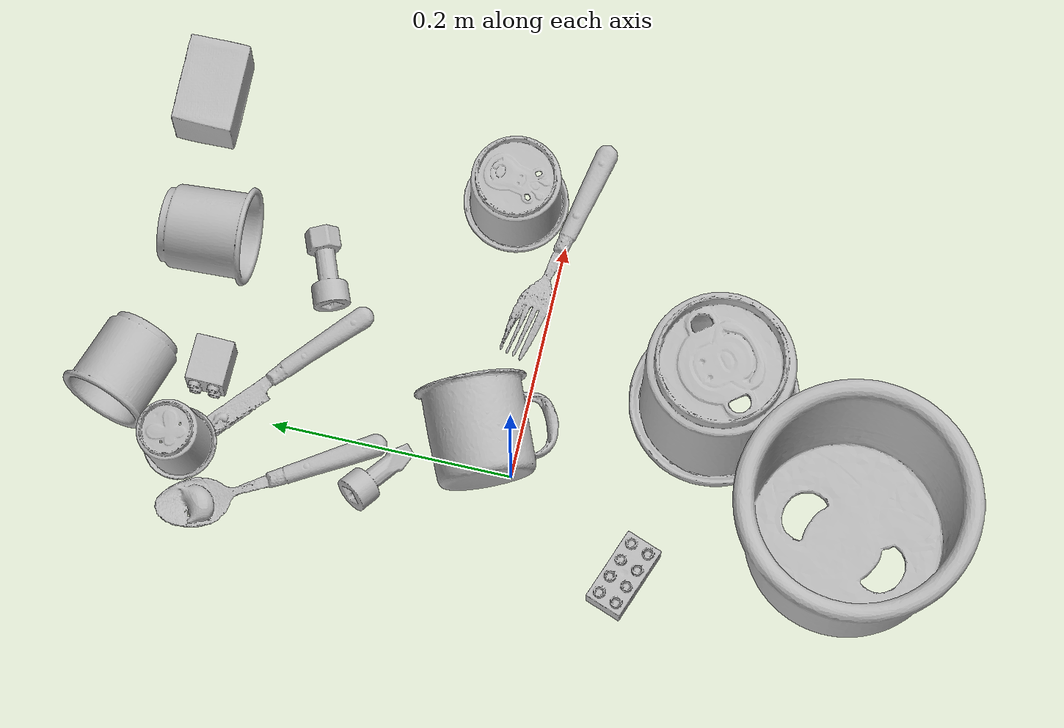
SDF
<sdf version="1.4">
  <world name="default">
    <light name="light1" type="point">
      <pose>0 0 1 0 0 0</pose>
      <diffuse>3 3 3 1</diffuse>
      <specular>3 3 3 1</specular>
    </light>
    <light name="light2" type="point">
      <pose>0 0.5 2 0 0 0</pose>
      <diffuse>1 1 1 1</diffuse>
      <specular>1 1 1 1</specular>
    </light>
    <light name="light3" type="point">
      <pose>0 0.5 2 0 0 0</pose>
      <diffuse>3 3 3 1</diffuse>
      <specular>3 3 3 1</specular>
    </light>
    <scene>
      <ambient>0.7 0.7 0.7</ambient>
    </scene>
    <model name="cup1">
      <link name="link_cup1">
        <collision name="default">
          <geometry>
            <mesh>
              <uri>model://e_cups/collision_meshes/collision.obj</uri>
              <scale>1.0 1.0 1.0</scale>
            </mesh>
          </geometry>
          <surface>
            <friction>
              <ode>
                <mu>0.5</mu>
                <mu2>0.5</mu2>
              </ode>
            </friction>
          <contact>
        <ode>
            <max_vel>0</max_vel>
            <min_depth>0.0001</min_depth>
            <kp>1e8</kp>
        </ode>
    </contact></surface>
        </collision>
        <visual name="default">
          <geometry>
            <mesh>
              <uri>model://e_cups/visual_meshes/visual.dae</uri>
              <scale>1.0 1.0 1.0</scale>
            </mesh>
          </geometry>
        </visual>
        <inertial>
          <mass>0.07679437845945358</mass>
          <pose>0.001135574304498732 0.002879783743992448 -0.0038829718250781298 0.6952411595659588 0.08767733322521654 -0.5235244631248706</pose>
          <inertia>
            <ixx>6.771342e-05</ixx>
            <iyy>7.077022e-05</iyy>
            <izz>6.4741864e-05</izz>
            <ixy>0</ixy>
            <ixz>0</ixz>
            <iyz>0</iyz>
          </inertia>
        </inertial>
      </link>
      <pose>0.01212354376912117 0.3250763714313507 0.03495634347200394 -1.4822644469961324 0.05199318186064441 1.2624431390785726</pose>
    </model>
    <model name="silverware1">
      <link name="link_silverware1">
        <collision name="default">
          <geometry>
            <mesh>
              <uri>model://spoon/collision_meshes/collision.obj</uri>
              <scale>1.0 1.0 1.0</scale>
            </mesh>
          </geometry>
          <surface>
            <friction>
              <ode>
                <mu>0.5</mu>
                <mu2>0.5</mu2>
              </ode>
            </friction>
          <contact>
        <ode>
            <max_vel>0</max_vel>
            <min_depth>0.0001</min_depth>
            <kp>1e8</kp>
        </ode>
    </contact></surface>
        </collision>
        <visual name="default">
          <geometry>
            <mesh>
              <uri>model://spoon/visual_meshes/visual.dae</uri>
              <scale>1.0 1.0 1.0</scale>
            </mesh>
          </geometry>
        </visual>
        <inertial>
          <mass>0.015083584003150463</mass>
          <pose>-0.005526313092559576 -0.001603418029844761 -0.000727165665011853 0.035216710638299134 -0.03906584880684835 0.006150613179751253</pose>
          <inertia>
            <ixx>8.389734e-07</ixx>
            <iyy>5.739254e-05</iyy>
            <izz>5.7806283e-05</izz>
            <ixy>0</ixy>
            <ixz>0</ixz>
            <iyz>0</iyz>
          </inertia>
        </inertial>
      </link>
      <pose>-0.04796982184052467 0.1891319304704666 0.008385257795453072 0.006729105320507774 0.026892999540218614 2.1099489197308174</pose>
    </model>
    <model name="cup2">
      <link name="link_cup2">
        <collision name="default">
          <geometry>
            <mesh>
              <uri>model://g_cups/collision_meshes/collision.obj</uri>
              <scale>1.0 1.0 1.0</scale>
            </mesh>
          </geometry>
          <surface>
            <friction>
              <ode>
                <mu>0.5</mu>
                <mu2>0.5</mu2>
              </ode>
            </friction>
          <contact>
        <ode>
            <max_vel>0</max_vel>
            <min_depth>0.0001</min_depth>
            <kp>1e8</kp>
        </ode>
    </contact></surface>
        </collision>
        <visual name="default">
          <geometry>
            <mesh>
              <uri>model://g_cups/visual_meshes/visual.dae</uri>
              <scale>1.0 1.0 1.0</scale>
            </mesh>
          </geometry>
        </visual>
        <inertial>
          <mass>0.04187431186437607</mass>
          <pose>-0.0007946277037262917 -4.2064348235726357e-05 -0.0021329382434487343 -0.21382305588888167 -0.31410659578681893 0.31120215507532384</pose>
          <inertia>
            <ixx>4.8876722e-05</ixx>
            <iyy>4.871046e-05</iyy>
            <izz>5.0627856e-05</izz>
            <ixy>0</ixy>
            <ixz>0</ixz>
            <iyz>0</iyz>
          </inertia>
        </inertial>
      </link>
      <pose>0.2296614646911621 0.048702675849199295 0.03711601719260216 3.1415922318808085 -2.3747475410371104e-07 3.0500447306981973</pose>
    </model>
    <model name="silverware2">
      <link name="link_silverware2">
        <collision name="default">
          <geometry>
            <mesh>
              <uri>model://fork/collision_meshes/collision.obj</uri>
              <scale>1.0 1.0 1.0</scale>
            </mesh>
          </geometry>
          <surface>
            <friction>
              <ode>
                <mu>0.5</mu>
                <mu2>0.5</mu2>
              </ode>
            </friction>
          <contact>
        <ode>
            <max_vel>0</max_vel>
            <min_depth>0.0001</min_depth>
            <kp>1e8</kp>
        </ode>
    </contact></surface>
        </collision>
        <visual name="default">
          <geometry>
            <mesh>
              <uri>model://fork/visual_meshes/visual.dae</uri>
              <scale>1.0 1.0 1.0</scale>
            </mesh>
          </geometry>
        </visual>
        <inertial>
          <mass>0.025364622473716736</mass>
          <pose>-0.029570050537586212 0.00046588227269239724 0.00032188615296036005 -0.013551666838441594 -0.010977837199147297 0.014453899745261501</pose>
          <inertia>
            <ixx>8.8917335e-07</ixx>
            <iyy>6.621973e-05</iyy>
            <izz>6.661743e-05</izz>
            <ixy>0</ixy>
            <ixz>0</ixz>
            <iyz>0</iyz>
          </inertia>
        </inertial>
      </link>
      <pose>0.19660219550132751 0.002929945010691881 0.007446623407304287 -3.063495054458723 0.0028358865685683267 2.9259894607172923</pose>
    </model>
    <model name="cup3">
      <link name="link_cup3">
        <collision name="default">
          <geometry>
            <mesh>
              <uri>model://f_cups/collision_meshes/collision.obj</uri>
              <scale>1.0 1.0 1.0</scale>
            </mesh>
          </geometry>
          <surface>
            <friction>
              <ode>
                <mu>0.5</mu>
                <mu2>0.5</mu2>
              </ode>
            </friction>
          <contact>
        <ode>
            <max_vel>0</max_vel>
            <min_depth>0.0001</min_depth>
            <kp>1e8</kp>
        </ode>
    </contact></surface>
        </collision>
        <visual name="default">
          <geometry>
            <mesh>
              <uri>model://f_cups/visual_meshes/visual.dae</uri>
              <scale>1.0 1.0 1.0</scale>
            </mesh>
          </geometry>
        </visual>
        <inertial>
          <mass>0.08338716626167297</mass>
          <pose>-0.0031714679207652807 -0.0006240069633349776 -0.003655536798760295 0.7862348245142414 -0.2607950949044878 -0.18237232658982702</pose>
          <inertia>
            <ixx>7.838616e-05</ixx>
            <iyy>8.222797e-05</iyy>
            <izz>8.560161e-05</izz>
            <ixy>0</ixy>
            <ixz>0</ixz>
            <iyz>0</iyz>
          </inertia>
        </inertial>
      </link>
      <pose>0.139236718416214 0.2861352860927582 0.03703106567263603 1.3152911506160594 -1.1783078272526835 0.2704353273662581</pose>
    </model>
    <model name="silverware3">
      <link name="link_silverware3">
        <collision name="default">
          <geometry>
            <mesh>
              <uri>model://knife/collision_meshes/collision.obj</uri>
              <scale>1.0 1.0 1.0</scale>
            </mesh>
          </geometry>
          <surface>
            <friction>
              <ode>
                <mu>0.5</mu>
                <mu2>0.5</mu2>
              </ode>
            </friction>
          <contact>
        <ode>
            <max_vel>0</max_vel>
            <min_depth>0.0001</min_depth>
            <kp>1e8</kp>
        </ode>
    </contact></surface>
        </collision>
        <visual name="default">
          <geometry>
            <mesh>
              <uri>model://knife/visual_meshes/visual.dae</uri>
              <scale>1.0 1.0 1.0</scale>
            </mesh>
          </geometry>
        </visual>
        <inertial>
          <mass>0.015509607270359993</mass>
          <pose>-0.02378525398671627 0.0015275129117071629 5.0620248657651246e-05 0.07305981518176793 0.01724841487141605 -0.0074098192082968535</pose>
          <inertia>
            <ixx>4.4022548e-07</ixx>
            <iyy>5.95854e-05</iyy>
            <izz>5.9727172e-05</izz>
            <ixy>0</ixy>
            <ixz>0</ixz>
            <iyz>0</iyz>
          </inertia>
        </inertial>
      </link>
      <pose>0.028053561225533485 0.21286292374134064 0.005909985397011042 3.043680276213253 0.04399724728053176 2.4196503115139363</pose>
    </model>
    <model name="cup4">
      <link name="link_cup4">
        <collision name="default">
          <geometry>
            <mesh>
              <uri>model://d_cups/collision_meshes/collision.obj</uri>
              <scale>2.0 2.0 2.0</scale>
            </mesh>
          </geometry>
          <surface>
            <friction>
              <ode>
                <mu>0.5</mu>
                <mu2>0.5</mu2>
              </ode>
            </friction>
          <contact>
        <ode>
            <max_vel>0</max_vel>
            <min_depth>0.0001</min_depth>
            <kp>1e8</kp>
        </ode>
    </contact></surface>
        </collision>
        <visual name="default">
          <geometry>
            <mesh>
              <uri>model://d_cups/visual_meshes/visual.dae</uri>
              <scale>2.0 2.0 2.0</scale>
            </mesh>
          </geometry>
        </visual>
        <inertial>
          <mass>0.5481204390525818</mass>
          <pose>0.001613611588254571 0.0038234798703342676 -0.0045333015732467175 0.2401214667218237 -0.2470996070340832 0.5942599316130982</pose>
          <inertia>
            <ixx>0.001835623</ixx>
            <iyy>0.0018303102</iyy>
            <izz>0.0016615508</izz>
            <ixy>0</ixy>
            <ixz>0</ixz>
            <iyz>0</iyz>
          </inertia>
        </inertial>
      </link>
      <pose>0.09769289940595627 -0.14801138639450073 0.06897804141044617 3.141592643926707 2.5065306568581085e-08 1.2296704549876385</pose>
    </model>
    <model name="cup41">
      <link name="link_cup41">
        <collision name="default">
          <geometry>
            <mesh>
              <uri>model://b_cups/collision_meshes/collision.obj</uri>
              <scale>1.0 1.0 1.0</scale>
            </mesh>
          </geometry>
          <surface>
            <friction>
              <ode>
                <mu>0.5</mu>
                <mu2>0.5</mu2>
              </ode>
            </friction>
          <contact>
        <ode>
            <max_vel>0</max_vel>
            <min_depth>0.0001</min_depth>
            <kp>1e8</kp>
        </ode>
    </contact></surface>
        </collision>
        <visual name="default">
          <geometry>
            <mesh>
              <uri>model://b_cups/visual_meshes/visual.dae</uri>
              <scale>1.0 1.0 1.0</scale>
            </mesh>
          </geometry>
        </visual>
        <inertial>
          <mass>0.04462150111794472</mass>
          <pose>0.0005182005697861314 0.0018058601999655366 -0.0013381819007918239 0.11356336410280554 0.038725039404113405 -0.3456939711537357</pose>
          <inertia>
            <ixx>2.9207904e-05</ixx>
            <iyy>2.8653376e-05</iyy>
            <izz>2.45779e-05</izz>
            <ixy>0</ixy>
            <ixz>0</ixz>
            <iyz>0</iyz>
          </inertia>
        </inertial>
      </link>
      <pose>-0.03553427755832672 0.2728608548641205 0.03526525944471359 3.0827658726583107 0.11479569254279282 1.7296678097194134</pose>
    </model>
    <model name="cup5">
      <link name="link_cup5">
        <collision name="default">
          <geometry>
            <mesh>
              <uri>model://i_cups/collision_meshes/collision.obj</uri>
              <scale>2.0 2.0 2.0</scale>
            </mesh>
          </geometry>
          <surface>
            <friction>
              <ode>
                <mu>0.5</mu>
                <mu2>0.5</mu2>
              </ode>
            </friction>
          <contact>
        <ode>
            <max_vel>0</max_vel>
            <min_depth>0.0001</min_depth>
            <kp>1e8</kp>
        </ode>
    </contact></surface>
        </collision>
        <visual name="default">
          <geometry>
            <mesh>
              <uri>model://i_cups/visual_meshes/visual.dae</uri>
              <scale>2.0 2.0 2.0</scale>
            </mesh>
          </geometry>
        </visual>
        <inertial>
          <mass>0.7183689475059509</mass>
          <pose>0.00022480347251985222 0.0003359461552463472 -0.0017158043337985873 -0.028983189607302198 -0.03987301698166741 -0.34590760218104494</pose>
          <inertia>
            <ixx>0.0039783698</ixx>
            <iyy>0.004013422</iyy>
            <izz>0.0044464725</izz>
            <ixy>0</ixy>
            <ixz>0</ixz>
            <iyz>0</iyz>
          </inertia>
        </inertial>
      </link>
      <pose>0.008044657297432423 -0.2755638062953949 0.07554968446493149 0.0018793303323322858 -0.006400526311083046 0.8619791184506138</pose>
    </model>
    <model name="cup51">
      <link name="link_cup51">
        <collision name="default">
          <geometry>
            <mesh>
              <uri>model://mug/collision_meshes/collision.obj</uri>
              <scale>1.0 1.0 1.0</scale>
            </mesh>
          </geometry>
          <surface>
            <friction>
              <ode>
                <mu>0.5</mu>
                <mu2>0.5</mu2>
              </ode>
            </friction>
          <contact>
        <ode>
            <max_vel>0</max_vel>
            <min_depth>0.0001</min_depth>
            <kp>1e8</kp>
        </ode>
    </contact></surface>
        </collision>
        <visual name="default">
          <geometry>
            <mesh>
              <uri>model://mug/visual_meshes/visual.dae</uri>
              <scale>1.0 1.0 1.0</scale>
            </mesh>
          </geometry>
        </visual>
        <inertial>
          <mass>0.1239403635263443</mass>
          <pose>0.009571672417223454 0.0008143244776874781 -0.01094733364880085 -0.12983126758676797 0.08737752450174939 0.055073145905888306</pose>
          <inertia>
            <ixx>0.0001231125</ixx>
            <iyy>0.00013750937</iyy>
            <izz>0.00015903146</izz>
            <ixy>0</ixy>
            <ixz>0</ixz>
            <iyz>0</iyz>
          </inertia>
        </inertial>
      </link>
      <pose>0.025948908179998398 0.021891232579946518 0.038074951618909836 1.4855651586848038 -0.3938634463043888 2.014099421896406</pose>
    </model>
    <model name="toy1">
      <link name="link_toy1">
        <collision name="default">
          <geometry>
            <mesh>
              <uri>model://e_toy_airplane/collision_meshes/collision.obj</uri>
              <scale>1.0 1.0 1.0</scale>
            </mesh>
          </geometry>
          <surface>
            <friction>
              <ode>
                <mu>0.5</mu>
                <mu2>0.5</mu2>
              </ode>
            </friction>
          <contact>
        <ode>
            <max_vel>0</max_vel>
            <min_depth>0.0001</min_depth>
            <kp>1e8</kp>
        </ode>
    </contact></surface>
        </collision>
        <visual name="default">
          <geometry>
            <mesh>
              <uri>model://e_toy_airplane/visual_meshes/visual.dae</uri>
              <scale>1.0 1.0 1.0</scale>
            </mesh>
          </geometry>
        </visual>
        <inertial>
          <mass>0.022831259295344353</mass>
          <pose>0.00011740475019905716 -2.2482799977296963e-05 -0.011187204159796238 0.005518483498250157 0.009228324176637706 0.15041338923558414</pose>
          <inertia>
            <ixx>6.9683606e-06</ixx>
            <iyy>6.897077e-06</iyy>
            <izz>2.0942666e-06</izz>
            <ixy>0</ixy>
            <ixz>0</ixz>
            <iyz>0</iyz>
          </inertia>
        </inertial>
      </link>
      <pose>-0.02186914160847664 0.10389922559261322 0.011941453441977501 2.045317108776123 1.1309572480191752 1.3821611126552562</pose>
    </model>
    <model name="toy2">
      <link name="link_toy2">
        <collision name="default">
          <geometry>
            <mesh>
              <uri>model://c_toy_airplane/collision_meshes/collision.obj</uri>
              <scale>1.0 1.0 1.0</scale>
            </mesh>
          </geometry>
          <surface>
            <friction>
              <ode>
                <mu>0.5</mu>
                <mu2>0.5</mu2>
              </ode>
            </friction>
          <contact>
        <ode>
            <max_vel>0</max_vel>
            <min_depth>0.0001</min_depth>
            <kp>1e8</kp>
        </ode>
    </contact></surface>
        </collision>
        <visual name="default">
          <geometry>
            <mesh>
              <uri>model://c_toy_airplane/visual_meshes/visual.dae</uri>
              <scale>1.0 1.0 1.0</scale>
            </mesh>
          </geometry>
        </visual>
        <inertial>
          <mass>0.014964861795306206</mass>
          <pose>-0.00023024252732284367 -4.4292315237726143e-07 -0.006080531980842352 -0.006193085961310731 -0.016797608001683555 0.7655123908688324</pose>
          <inertia>
            <ixx>6.871557e-06</ixx>
            <iyy>6.852165e-06</iyy>
            <izz>1.6133057e-06</izz>
            <ixy>0</ixy>
            <ixz>0</ixz>
            <iyz>0</iyz>
          </inertia>
        </inertial>
      </link>
      <pose>0.13576360046863556 0.18726395070552826 0.014692852273583412 1.5894955921246414 -0.09926755057655318 1.9514831717896466</pose>
    </model>
    <model name="toy3">
      <link name="link_toy3">
        <collision name="default">
          <geometry>
            <mesh>
              <uri>model://c_lego_duplo/collision_meshes/collision.obj</uri>
              <scale>1.0 1.0 1.0</scale>
            </mesh>
          </geometry>
          <surface>
            <friction>
              <ode>
                <mu>0.5</mu>
                <mu2>0.5</mu2>
              </ode>
            </friction>
          <contact>
        <ode>
            <max_vel>0</max_vel>
            <min_depth>0.0001</min_depth>
            <kp>1e8</kp>
        </ode>
    </contact></surface>
        </collision>
        <visual name="default">
          <geometry>
            <mesh>
              <uri>model://c_lego_duplo/visual_meshes/visual.dae</uri>
              <scale>1.0 1.0 1.0</scale>
            </mesh>
          </geometry>
        </visual>
        <inertial>
          <mass>0.043811071664094925</mass>
          <pose>0.00031645968556404114 0.00019464633078314364 0.0010453150607645512 -0.011520790971684333 0.005900079198968262 0.031100329952374963</pose>
          <inertia>
            <ixx>1.685932e-05</ixx>
            <iyy>5.3854724e-06</iyy>
            <izz>1.970185e-05</izz>
            <ixy>0</ixy>
            <ixz>0</ixz>
            <iyz>0</iyz>
          </inertia>
        </inertial>
      </link>
      <pose>-0.06144595518708229 -0.1071413904428482 0.01198149286210537 0.008018957019152798 -0.0020915387678755526 1.1949338536012273</pose>
    </model>
    <model name="toy4">
      <link name="link_toy4">
        <collision name="default">
          <geometry>
            <mesh>
              <uri>model://foam_brick/collision_meshes/collision.obj</uri>
              <scale>1.0 1.0 1.0</scale>
            </mesh>
          </geometry>
          <surface>
            <friction>
              <ode>
                <mu>0.5</mu>
                <mu2>0.5</mu2>
              </ode>
            </friction>
          <contact>
        <ode>
            <max_vel>0</max_vel>
            <min_depth>0.0001</min_depth>
            <kp>1e8</kp>
        </ode>
    </contact></surface>
        </collision>
        <visual name="default">
          <geometry>
            <mesh>
              <uri>model://foam_brick/visual_meshes/visual.dae</uri>
              <scale>1.0 1.0 1.0</scale>
            </mesh>
          </geometry>
        </visual>
        <inertial>
          <mass>0.278400182723999</mass>
          <pose>-0.0002522472059354186 0.00034584358218126 -0.0002532101352699101 -0.2940175595239471 0.01727444673583901 -0.0007449899720057078</pose>
          <inertia>
            <ixx>0.00012161039</ixx>
            <iyy>0.00019415727</iyy>
            <izz>0.00019662478</izz>
            <ixy>0</ixy>
            <ixz>0</ixz>
            <iyz>0</iyz>
          </inertia>
        </inertial>
      </link>
      <pose>0.25960907340049744 0.3137457072734833 0.025910699740052223 1.5828211051715695 -0.00037576660845518823 -3.123294004367588</pose>
    </model>
    <model name="toy5">
      <link name="link_toy5">
        <collision name="default">
          <geometry>
            <mesh>
              <uri>model://f_lego_duplo/collision_meshes/collision.obj</uri>
              <scale>1.0 1.0 1.0</scale>
            </mesh>
          </geometry>
          <surface>
            <friction>
              <ode>
                <mu>0.5</mu>
                <mu2>0.5</mu2>
              </ode>
            </friction>
          <contact>
        <ode>
            <max_vel>0</max_vel>
            <min_depth>0.0001</min_depth>
            <kp>1e8</kp>
        </ode>
    </contact></surface>
        </collision>
        <visual name="default">
          <geometry>
            <mesh>
              <uri>model://f_lego_duplo/visual_meshes/visual.dae</uri>
              <scale>1.0 1.0 1.0</scale>
            </mesh>
          </geometry>
        </visual>
        <inertial>
          <mass>0.033785246312618256</mass>
          <pose>2.369392132095527e-05 0.00013393175322562456 0.0018837875686585903 0.029838526741840128 -0.014425189077584645 -0.6756601169838921</pose>
          <inertia>
            <ixx>7.139008e-06</ixx>
            <iyy>7.202609e-06</iyy>
            <izz>6.1969613e-06</izz>
            <ixy>0</ixy>
            <ixz>0</ixz>
            <iyz>0</iyz>
          </inertia>
        </inertial>
      </link>
      <pose>0.03205149248242378 0.2594853341579437 0.016363855451345444 0.682919725084893 -1.5707394453746677 -0.7038585880859644</pose>
    </model>
  <physics type="ode">
      <max_contacts>50</max_contacts>
      <ode>
        <solver>
          <type>quick</type>
          <iters>75</iters>
        </solver>
        <constraints>
          <contact_max_correcting_vel>0</contact_max_correcting_vel>
          <contact_surface_layer>0</contact_surface_layer>
        </constraints>
      </ode>
    </physics></world>
</sdf>
